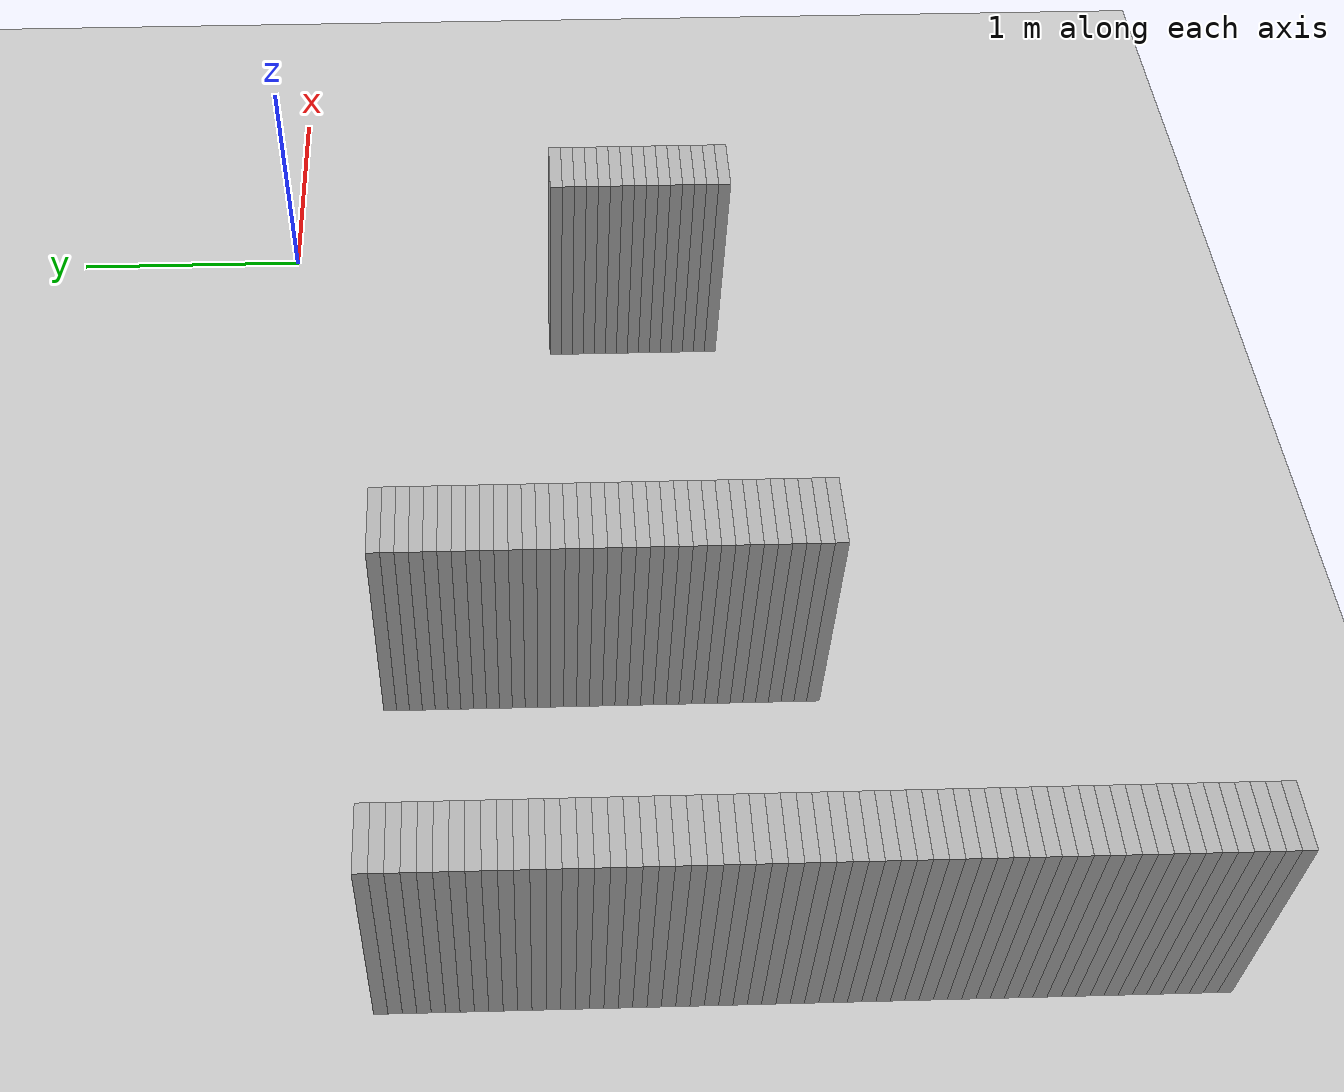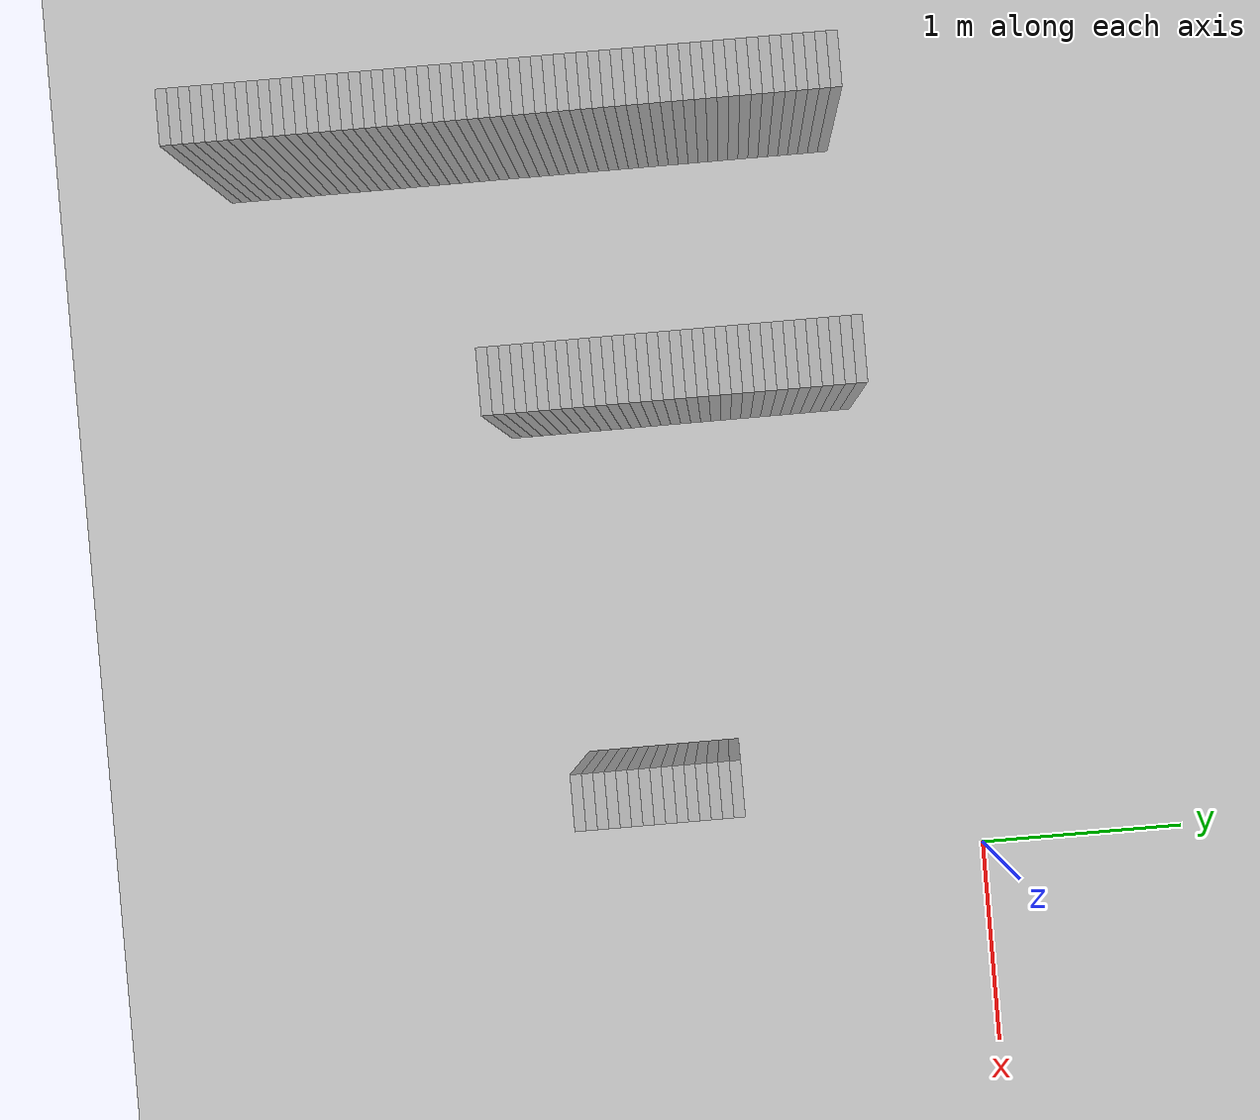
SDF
<sdf version="1.6">
 <world name="maze">
  <include><uri>model://ground_plane</uri></include>
  <include><uri>model://sun</uri></include>
  <model name="wall_0_85">
   <static>true</static>
   <pose>-3.6500000000000004 -0.5 0.5 0 0 0</pose>
   <link name="link">
    <collision name="collision"><geometry><box><size>0.25 0.05 1.0</size></box></geometry></collision>
    <visual name="visual"><geometry><box><size>0.25 0.05 1.0</size></box></geometry></visual>
   </link>
  </model>
  <model name="wall_25_85">
   <static>true</static>
   <pose>-2.375 -0.5 0.5 0 0 0</pose>
   <link name="link">
    <collision name="collision">
     <geometry><box><size>0.30000000000000004 0.05 1.0</size></box></geometry>
    </collision>
    <visual name="visual"><geometry><box><size>0.30000000000000004 0.05 1.0</size></box></geometry></visual>
   </link>
  </model>
  <model name="wall_0_86">
   <static>true</static>
   <pose>-3.6500000000000004 -0.55 0.5 0 0 0</pose>
   <link name="link">
    <collision name="collision"><geometry><box><size>0.25 0.05 1.0</size></box></geometry></collision>
    <visual name="visual"><geometry><box><size>0.25 0.05 1.0</size></box></geometry></visual>
   </link>
  </model>
  <model name="wall_25_86">
   <static>true</static>
   <pose>-2.375 -0.55 0.5 0 0 0</pose>
   <link name="link">
    <collision name="collision">
     <geometry><box><size>0.30000000000000004 0.05 1.0</size></box></geometry>
    </collision>
    <visual name="visual"><geometry><box><size>0.30000000000000004 0.05 1.0</size></box></geometry></visual>
   </link>
  </model>
  <model name="wall_0_87">
   <static>true</static>
   <pose>-3.6500000000000004 -0.6000000000000001 0.5 0 0 0</pose>
   <link name="link">
    <collision name="collision"><geometry><box><size>0.25 0.05 1.0</size></box></geometry></collision>
    <visual name="visual"><geometry><box><size>0.25 0.05 1.0</size></box></geometry></visual>
   </link>
  </model>
  <model name="wall_25_87">
   <static>true</static>
   <pose>-2.375 -0.6000000000000001 0.5 0 0 0</pose>
   <link name="link">
    <collision name="collision">
     <geometry><box><size>0.30000000000000004 0.05 1.0</size></box></geometry>
    </collision>
    <visual name="visual"><geometry><box><size>0.30000000000000004 0.05 1.0</size></box></geometry></visual>
   </link>
  </model>
  <model name="wall_0_88">
   <static>true</static>
   <pose>-3.6500000000000004 -0.65 0.5 0 0 0</pose>
   <link name="link">
    <collision name="collision"><geometry><box><size>0.25 0.05 1.0</size></box></geometry></collision>
    <visual name="visual"><geometry><box><size>0.25 0.05 1.0</size></box></geometry></visual>
   </link>
  </model>
  <model name="wall_25_88">
   <static>true</static>
   <pose>-2.375 -0.65 0.5 0 0 0</pose>
   <link name="link">
    <collision name="collision">
     <geometry><box><size>0.30000000000000004 0.05 1.0</size></box></geometry>
    </collision>
    <visual name="visual"><geometry><box><size>0.30000000000000004 0.05 1.0</size></box></geometry></visual>
   </link>
  </model>
  <model name="wall_0_89">
   <static>true</static>
   <pose>-3.6500000000000004 -0.7000000000000001 0.5 0 0 0</pose>
   <link name="link">
    <collision name="collision"><geometry><box><size>0.25 0.05 1.0</size></box></geometry></collision>
    <visual name="visual"><geometry><box><size>0.25 0.05 1.0</size></box></geometry></visual>
   </link>
  </model>
  <model name="wall_25_89">
   <static>true</static>
   <pose>-2.375 -0.7000000000000001 0.5 0 0 0</pose>
   <link name="link">
    <collision name="collision">
     <geometry><box><size>0.30000000000000004 0.05 1.0</size></box></geometry>
    </collision>
    <visual name="visual"><geometry><box><size>0.30000000000000004 0.05 1.0</size></box></geometry></visual>
   </link>
  </model>
  <model name="wall_0_90">
   <static>true</static>
   <pose>-3.6500000000000004 -0.75 0.5 0 0 0</pose>
   <link name="link">
    <collision name="collision"><geometry><box><size>0.25 0.05 1.0</size></box></geometry></collision>
    <visual name="visual"><geometry><box><size>0.25 0.05 1.0</size></box></geometry></visual>
   </link>
  </model>
  <model name="wall_25_90">
   <static>true</static>
   <pose>-2.375 -0.75 0.5 0 0 0</pose>
   <link name="link">
    <collision name="collision">
     <geometry><box><size>0.30000000000000004 0.05 1.0</size></box></geometry>
    </collision>
    <visual name="visual"><geometry><box><size>0.30000000000000004 0.05 1.0</size></box></geometry></visual>
   </link>
  </model>
  <model name="wall_0_91">
   <static>true</static>
   <pose>-3.6500000000000004 -0.8 0.5 0 0 0</pose>
   <link name="link">
    <collision name="collision"><geometry><box><size>0.25 0.05 1.0</size></box></geometry></collision>
    <visual name="visual"><geometry><box><size>0.25 0.05 1.0</size></box></geometry></visual>
   </link>
  </model>
  <model name="wall_25_91">
   <static>true</static>
   <pose>-2.375 -0.8 0.5 0 0 0</pose>
   <link name="link">
    <collision name="collision">
     <geometry><box><size>0.30000000000000004 0.05 1.0</size></box></geometry>
    </collision>
    <visual name="visual"><geometry><box><size>0.30000000000000004 0.05 1.0</size></box></geometry></visual>
   </link>
  </model>
  <model name="wall_0_92">
   <static>true</static>
   <pose>-3.6500000000000004 -0.8500000000000001 0.5 0 0 0</pose>
   <link name="link">
    <collision name="collision"><geometry><box><size>0.25 0.05 1.0</size></box></geometry></collision>
    <visual name="visual"><geometry><box><size>0.25 0.05 1.0</size></box></geometry></visual>
   </link>
  </model>
  <model name="wall_25_92">
   <static>true</static>
   <pose>-2.375 -0.8500000000000001 0.5 0 0 0</pose>
   <link name="link">
    <collision name="collision">
     <geometry><box><size>0.30000000000000004 0.05 1.0</size></box></geometry>
    </collision>
    <visual name="visual"><geometry><box><size>0.30000000000000004 0.05 1.0</size></box></geometry></visual>
   </link>
  </model>
  <model name="wall_0_93">
   <static>true</static>
   <pose>-3.6500000000000004 -0.9 0.5 0 0 0</pose>
   <link name="link">
    <collision name="collision"><geometry><box><size>0.25 0.05 1.0</size></box></geometry></collision>
    <visual name="visual"><geometry><box><size>0.25 0.05 1.0</size></box></geometry></visual>
   </link>
  </model>
  <model name="wall_25_93">
   <static>true</static>
   <pose>-2.375 -0.9 0.5 0 0 0</pose>
   <link name="link">
    <collision name="collision">
     <geometry><box><size>0.30000000000000004 0.05 1.0</size></box></geometry>
    </collision>
    <visual name="visual"><geometry><box><size>0.30000000000000004 0.05 1.0</size></box></geometry></visual>
   </link>
  </model>
  <model name="wall_0_94">
   <static>true</static>
   <pose>-3.6500000000000004 -0.9500000000000001 0.5 0 0 0</pose>
   <link name="link">
    <collision name="collision"><geometry><box><size>0.25 0.05 1.0</size></box></geometry></collision>
    <visual name="visual"><geometry><box><size>0.25 0.05 1.0</size></box></geometry></visual>
   </link>
  </model>
  <model name="wall_25_94">
   <static>true</static>
   <pose>-2.375 -0.9500000000000001 0.5 0 0 0</pose>
   <link name="link">
    <collision name="collision">
     <geometry><box><size>0.30000000000000004 0.05 1.0</size></box></geometry>
    </collision>
    <visual name="visual"><geometry><box><size>0.30000000000000004 0.05 1.0</size></box></geometry></visual>
   </link>
  </model>
  <model name="wall_0_95">
   <static>true</static>
   <pose>-3.6500000000000004 -1.0 0.5 0 0 0</pose>
   <link name="link">
    <collision name="collision"><geometry><box><size>0.25 0.05 1.0</size></box></geometry></collision>
    <visual name="visual"><geometry><box><size>0.25 0.05 1.0</size></box></geometry></visual>
   </link>
  </model>
  <model name="wall_25_95">
   <static>true</static>
   <pose>-2.375 -1.0 0.5 0 0 0</pose>
   <link name="link">
    <collision name="collision">
     <geometry><box><size>0.30000000000000004 0.05 1.0</size></box></geometry>
    </collision>
    <visual name="visual"><geometry><box><size>0.30000000000000004 0.05 1.0</size></box></geometry></visual>
   </link>
  </model>
  <model name="wall_0_96">
   <static>true</static>
   <pose>-3.6500000000000004 -1.05 0.5 0 0 0</pose>
   <link name="link">
    <collision name="collision"><geometry><box><size>0.25 0.05 1.0</size></box></geometry></collision>
    <visual name="visual"><geometry><box><size>0.25 0.05 1.0</size></box></geometry></visual>
   </link>
  </model>
  <model name="wall_25_96">
   <static>true</static>
   <pose>-2.375 -1.05 0.5 0 0 0</pose>
   <link name="link">
    <collision name="collision">
     <geometry><box><size>0.30000000000000004 0.05 1.0</size></box></geometry>
    </collision>
    <visual name="visual"><geometry><box><size>0.30000000000000004 0.05 1.0</size></box></geometry></visual>
   </link>
  </model>
  <model name="wall_0_97">
   <static>true</static>
   <pose>-3.6500000000000004 -1.1 0.5 0 0 0</pose>
   <link name="link">
    <collision name="collision"><geometry><box><size>0.25 0.05 1.0</size></box></geometry></collision>
    <visual name="visual"><geometry><box><size>0.25 0.05 1.0</size></box></geometry></visual>
   </link>
  </model>
  <model name="wall_25_97">
   <static>true</static>
   <pose>-2.375 -1.1 0.5 0 0 0</pose>
   <link name="link">
    <collision name="collision">
     <geometry><box><size>0.30000000000000004 0.05 1.0</size></box></geometry>
    </collision>
    <visual name="visual"><geometry><box><size>0.30000000000000004 0.05 1.0</size></box></geometry></visual>
   </link>
  </model>
  <model name="wall_0_98">
   <static>true</static>
   <pose>-3.6500000000000004 -1.1500000000000001 0.5 0 0 0</pose>
   <link name="link">
    <collision name="collision"><geometry><box><size>0.25 0.05 1.0</size></box></geometry></collision>
    <visual name="visual"><geometry><box><size>0.25 0.05 1.0</size></box></geometry></visual>
   </link>
  </model>
  <model name="wall_25_98">
   <static>true</static>
   <pose>-2.375 -1.1500000000000001 0.5 0 0 0</pose>
   <link name="link">
    <collision name="collision">
     <geometry><box><size>0.30000000000000004 0.05 1.0</size></box></geometry>
    </collision>
    <visual name="visual"><geometry><box><size>0.30000000000000004 0.05 1.0</size></box></geometry></visual>
   </link>
  </model>
  <model name="wall_0_99">
   <static>true</static>
   <pose>-3.6500000000000004 -1.2000000000000002 0.5 0 0 0</pose>
   <link name="link">
    <collision name="collision"><geometry><box><size>0.25 0.05 1.0</size></box></geometry></collision>
    <visual name="visual"><geometry><box><size>0.25 0.05 1.0</size></box></geometry></visual>
   </link>
  </model>
  <model name="wall_25_99">
   <static>true</static>
   <pose>-2.375 -1.2000000000000002 0.5 0 0 0</pose>
   <link name="link">
    <collision name="collision">
     <geometry><box><size>0.30000000000000004 0.05 1.0</size></box></geometry>
    </collision>
    <visual name="visual"><geometry><box><size>0.30000000000000004 0.05 1.0</size></box></geometry></visual>
   </link>
  </model>
  <model name="wall_63_99">
   <static>true</static>
   <pose>-0.5 -1.2000000000000002 0.5 0 0 0</pose>
   <link name="link">
    <collision name="collision"><geometry><box><size>0.25 0.05 1.0</size></box></geometry></collision>
    <visual name="visual"><geometry><box><size>0.25 0.05 1.0</size></box></geometry></visual>
   </link>
  </model>
  <model name="wall_0_100">
   <static>true</static>
   <pose>-3.6500000000000004 -1.25 0.5 0 0 0</pose>
   <link name="link">
    <collision name="collision"><geometry><box><size>0.25 0.05 1.0</size></box></geometry></collision>
    <visual name="visual"><geometry><box><size>0.25 0.05 1.0</size></box></geometry></visual>
   </link>
  </model>
  <model name="wall_25_100">
   <static>true</static>
   <pose>-2.375 -1.25 0.5 0 0 0</pose>
   <link name="link">
    <collision name="collision">
     <geometry><box><size>0.30000000000000004 0.05 1.0</size></box></geometry>
    </collision>
    <visual name="visual"><geometry><box><size>0.30000000000000004 0.05 1.0</size></box></geometry></visual>
   </link>
  </model>
  <model name="wall_63_100">
   <static>true</static>
   <pose>-0.5 -1.25 0.5 0 0 0</pose>
   <link name="link">
    <collision name="collision"><geometry><box><size>0.25 0.05 1.0</size></box></geometry></collision>
    <visual name="visual"><geometry><box><size>0.25 0.05 1.0</size></box></geometry></visual>
   </link>
  </model>
  <model name="wall_0_101">
   <static>true</static>
   <pose>-3.6500000000000004 -1.3 0.5 0 0 0</pose>
   <link name="link">
    <collision name="collision"><geometry><box><size>0.25 0.05 1.0</size></box></geometry></collision>
    <visual name="visual"><geometry><box><size>0.25 0.05 1.0</size></box></geometry></visual>
   </link>
  </model>
  <model name="wall_25_101">
   <static>true</static>
   <pose>-2.375 -1.3 0.5 0 0 0</pose>
   <link name="link">
    <collision name="collision">
     <geometry><box><size>0.30000000000000004 0.05 1.0</size></box></geometry>
    </collision>
    <visual name="visual"><geometry><box><size>0.30000000000000004 0.05 1.0</size></box></geometry></visual>
   </link>
  </model>
  <model name="wall_63_101">
   <static>true</static>
   <pose>-0.5 -1.3 0.5 0 0 0</pose>
   <link name="link">
    <collision name="collision"><geometry><box><size>0.25 0.05 1.0</size></box></geometry></collision>
    <visual name="visual"><geometry><box><size>0.25 0.05 1.0</size></box></geometry></visual>
   </link>
  </model>
  <model name="wall_0_102">
   <static>true</static>
   <pose>-3.6500000000000004 -1.35 0.5 0 0 0</pose>
   <link name="link">
    <collision name="collision"><geometry><box><size>0.25 0.05 1.0</size></box></geometry></collision>
    <visual name="visual"><geometry><box><size>0.25 0.05 1.0</size></box></geometry></visual>
   </link>
  </model>
  <model name="wall_25_102">
   <static>true</static>
   <pose>-2.375 -1.35 0.5 0 0 0</pose>
   <link name="link">
    <collision name="collision">
     <geometry><box><size>0.30000000000000004 0.05 1.0</size></box></geometry>
    </collision>
    <visual name="visual"><geometry><box><size>0.30000000000000004 0.05 1.0</size></box></geometry></visual>
   </link>
  </model>
  <model name="wall_63_102">
   <static>true</static>
   <pose>-0.5 -1.35 0.5 0 0 0</pose>
   <link name="link">
    <collision name="collision"><geometry><box><size>0.25 0.05 1.0</size></box></geometry></collision>
    <visual name="visual"><geometry><box><size>0.25 0.05 1.0</size></box></geometry></visual>
   </link>
  </model>
  <model name="wall_0_103">
   <static>true</static>
   <pose>-3.6500000000000004 -1.4000000000000001 0.5 0 0 0</pose>
   <link name="link">
    <collision name="collision"><geometry><box><size>0.25 0.05 1.0</size></box></geometry></collision>
    <visual name="visual"><geometry><box><size>0.25 0.05 1.0</size></box></geometry></visual>
   </link>
  </model>
  <model name="wall_25_103">
   <static>true</static>
   <pose>-2.375 -1.4000000000000001 0.5 0 0 0</pose>
   <link name="link">
    <collision name="collision">
     <geometry><box><size>0.30000000000000004 0.05 1.0</size></box></geometry>
    </collision>
    <visual name="visual"><geometry><box><size>0.30000000000000004 0.05 1.0</size></box></geometry></visual>
   </link>
  </model>
  <model name="wall_63_103">
   <static>true</static>
   <pose>-0.5 -1.4000000000000001 0.5 0 0 0</pose>
   <link name="link">
    <collision name="collision"><geometry><box><size>0.25 0.05 1.0</size></box></geometry></collision>
    <visual name="visual"><geometry><box><size>0.25 0.05 1.0</size></box></geometry></visual>
   </link>
  </model>
  <model name="wall_0_104">
   <static>true</static>
   <pose>-3.6500000000000004 -1.4500000000000002 0.5 0 0 0</pose>
   <link name="link">
    <collision name="collision"><geometry><box><size>0.25 0.05 1.0</size></box></geometry></collision>
    <visual name="visual"><geometry><box><size>0.25 0.05 1.0</size></box></geometry></visual>
   </link>
  </model>
  <model name="wall_25_104">
   <static>true</static>
   <pose>-2.375 -1.4500000000000002 0.5 0 0 0</pose>
   <link name="link">
    <collision name="collision">
     <geometry><box><size>0.30000000000000004 0.05 1.0</size></box></geometry>
    </collision>
    <visual name="visual"><geometry><box><size>0.30000000000000004 0.05 1.0</size></box></geometry></visual>
   </link>
  </model>
  <model name="wall_63_104">
   <static>true</static>
   <pose>-0.5 -1.4500000000000002 0.5 0 0 0</pose>
   <link name="link">
    <collision name="collision"><geometry><box><size>0.25 0.05 1.0</size></box></geometry></collision>
    <visual name="visual"><geometry><box><size>0.25 0.05 1.0</size></box></geometry></visual>
   </link>
  </model>
  <model name="wall_0_105">
   <static>true</static>
   <pose>-3.6500000000000004 -1.5 0.5 0 0 0</pose>
   <link name="link">
    <collision name="collision"><geometry><box><size>0.25 0.05 1.0</size></box></geometry></collision>
    <visual name="visual"><geometry><box><size>0.25 0.05 1.0</size></box></geometry></visual>
   </link>
  </model>
  <model name="wall_25_105">
   <static>true</static>
   <pose>-2.375 -1.5 0.5 0 0 0</pose>
   <link name="link">
    <collision name="collision">
     <geometry><box><size>0.30000000000000004 0.05 1.0</size></box></geometry>
    </collision>
    <visual name="visual"><geometry><box><size>0.30000000000000004 0.05 1.0</size></box></geometry></visual>
   </link>
  </model>
  <model name="wall_63_105">
   <static>true</static>
   <pose>-0.5 -1.5 0.5 0 0 0</pose>
   <link name="link">
    <collision name="collision"><geometry><box><size>0.25 0.05 1.0</size></box></geometry></collision>
    <visual name="visual"><geometry><box><size>0.25 0.05 1.0</size></box></geometry></visual>
   </link>
  </model>
  <model name="wall_0_106">
   <static>true</static>
   <pose>-3.6500000000000004 -1.55 0.5 0 0 0</pose>
   <link name="link">
    <collision name="collision"><geometry><box><size>0.25 0.05 1.0</size></box></geometry></collision>
    <visual name="visual"><geometry><box><size>0.25 0.05 1.0</size></box></geometry></visual>
   </link>
  </model>
  <model name="wall_25_106">
   <static>true</static>
   <pose>-2.375 -1.55 0.5 0 0 0</pose>
   <link name="link">
    <collision name="collision">
     <geometry><box><size>0.30000000000000004 0.05 1.0</size></box></geometry>
    </collision>
    <visual name="visual"><geometry><box><size>0.30000000000000004 0.05 1.0</size></box></geometry></visual>
   </link>
  </model>
  <model name="wall_63_106">
   <static>true</static>
   <pose>-0.5 -1.55 0.5 0 0 0</pose>
   <link name="link">
    <collision name="collision"><geometry><box><size>0.25 0.05 1.0</size></box></geometry></collision>
    <visual name="visual"><geometry><box><size>0.25 0.05 1.0</size></box></geometry></visual>
   </link>
  </model>
  <model name="wall_0_107">
   <static>true</static>
   <pose>-3.6500000000000004 -1.6 0.5 0 0 0</pose>
   <link name="link">
    <collision name="collision"><geometry><box><size>0.25 0.05 1.0</size></box></geometry></collision>
    <visual name="visual"><geometry><box><size>0.25 0.05 1.0</size></box></geometry></visual>
   </link>
  </model>
  <model name="wall_25_107">
   <static>true</static>
   <pose>-2.375 -1.6 0.5 0 0 0</pose>
   <link name="link">
    <collision name="collision">
     <geometry><box><size>0.30000000000000004 0.05 1.0</size></box></geometry>
    </collision>
    <visual name="visual"><geometry><box><size>0.30000000000000004 0.05 1.0</size></box></geometry></visual>
   </link>
  </model>
  <model name="wall_63_107">
   <static>true</static>
   <pose>-0.5 -1.6 0.5 0 0 0</pose>
   <link name="link">
    <collision name="collision"><geometry><box><size>0.25 0.05 1.0</size></box></geometry></collision>
    <visual name="visual"><geometry><box><size>0.25 0.05 1.0</size></box></geometry></visual>
   </link>
  </model>
  <model name="wall_0_108">
   <static>true</static>
   <pose>-3.6500000000000004 -1.6500000000000001 0.5 0 0 0</pose>
   <link name="link">
    <collision name="collision"><geometry><box><size>0.25 0.05 1.0</size></box></geometry></collision>
    <visual name="visual"><geometry><box><size>0.25 0.05 1.0</size></box></geometry></visual>
   </link>
  </model>
  <model name="wall_25_108">
   <static>true</static>
   <pose>-2.375 -1.6500000000000001 0.5 0 0 0</pose>
   <link name="link">
    <collision name="collision">
     <geometry><box><size>0.30000000000000004 0.05 1.0</size></box></geometry>
    </collision>
    <visual name="visual"><geometry><box><size>0.30000000000000004 0.05 1.0</size></box></geometry></visual>
   </link>
  </model>
  <model name="wall_63_108">
   <static>true</static>
   <pose>-0.5 -1.6500000000000001 0.5 0 0 0</pose>
   <link name="link">
    <collision name="collision"><geometry><box><size>0.25 0.05 1.0</size></box></geometry></collision>
    <visual name="visual"><geometry><box><size>0.25 0.05 1.0</size></box></geometry></visual>
   </link>
  </model>
  <model name="wall_0_109">
   <static>true</static>
   <pose>-3.6500000000000004 -1.7000000000000002 0.5 0 0 0</pose>
   <link name="link">
    <collision name="collision"><geometry><box><size>0.25 0.05 1.0</size></box></geometry></collision>
    <visual name="visual"><geometry><box><size>0.25 0.05 1.0</size></box></geometry></visual>
   </link>
  </model>
  <model name="wall_25_109">
   <static>true</static>
   <pose>-2.375 -1.7000000000000002 0.5 0 0 0</pose>
   <link name="link">
    <collision name="collision">
     <geometry><box><size>0.30000000000000004 0.05 1.0</size></box></geometry>
    </collision>
    <visual name="visual"><geometry><box><size>0.30000000000000004 0.05 1.0</size></box></geometry></visual>
   </link>
  </model>
  <model name="wall_63_109">
   <static>true</static>
   <pose>-0.5 -1.7000000000000002 0.5 0 0 0</pose>
   <link name="link">
    <collision name="collision"><geometry><box><size>0.25 0.05 1.0</size></box></geometry></collision>
    <visual name="visual"><geometry><box><size>0.25 0.05 1.0</size></box></geometry></visual>
   </link>
  </model>
  <model name="wall_0_110">
   <static>true</static>
   <pose>-3.6500000000000004 -1.75 0.5 0 0 0</pose>
   <link name="link">
    <collision name="collision"><geometry><box><size>0.25 0.05 1.0</size></box></geometry></collision>
    <visual name="visual"><geometry><box><size>0.25 0.05 1.0</size></box></geometry></visual>
   </link>
  </model>
  <model name="wall_25_110">
   <static>true</static>
   <pose>-2.375 -1.75 0.5 0 0 0</pose>
   <link name="link">
    <collision name="collision">
     <geometry><box><size>0.30000000000000004 0.05 1.0</size></box></geometry>
    </collision>
    <visual name="visual"><geometry><box><size>0.30000000000000004 0.05 1.0</size></box></geometry></visual>
   </link>
  </model>
  <model name="wall_63_110">
   <static>true</static>
   <pose>-0.5 -1.75 0.5 0 0 0</pose>
   <link name="link">
    <collision name="collision"><geometry><box><size>0.25 0.05 1.0</size></box></geometry></collision>
    <visual name="visual"><geometry><box><size>0.25 0.05 1.0</size></box></geometry></visual>
   </link>
  </model>
  <model name="wall_0_111">
   <static>true</static>
   <pose>-3.6500000000000004 -1.8 0.5 0 0 0</pose>
   <link name="link">
    <collision name="collision"><geometry><box><size>0.25 0.05 1.0</size></box></geometry></collision>
    <visual name="visual"><geometry><box><size>0.25 0.05 1.0</size></box></geometry></visual>
   </link>
  </model>
  <model name="wall_25_111">
   <static>true</static>
   <pose>-2.375 -1.8 0.5 0 0 0</pose>
   <link name="link">
    <collision name="collision">
     <geometry><box><size>0.30000000000000004 0.05 1.0</size></box></geometry>
    </collision>
    <visual name="visual"><geometry><box><size>0.30000000000000004 0.05 1.0</size></box></geometry></visual>
   </link>
  </model>
  <model name="wall_63_111">
   <static>true</static>
   <pose>-0.5 -1.8 0.5 0 0 0</pose>
   <link name="link">
    <collision name="collision"><geometry><box><size>0.25 0.05 1.0</size></box></geometry></collision>
    <visual name="visual"><geometry><box><size>0.25 0.05 1.0</size></box></geometry></visual>
   </link>
  </model>
  <model name="wall_0_112">
   <static>true</static>
   <pose>-3.6500000000000004 -1.85 0.5 0 0 0</pose>
   <link name="link">
    <collision name="collision"><geometry><box><size>0.25 0.05 1.0</size></box></geometry></collision>
    <visual name="visual"><geometry><box><size>0.25 0.05 1.0</size></box></geometry></visual>
   </link>
  </model>
  <model name="wall_25_112">
   <static>true</static>
   <pose>-2.375 -1.85 0.5 0 0 0</pose>
   <link name="link">
    <collision name="collision">
     <geometry><box><size>0.30000000000000004 0.05 1.0</size></box></geometry>
    </collision>
    <visual name="visual"><geometry><box><size>0.30000000000000004 0.05 1.0</size></box></geometry></visual>
   </link>
  </model>
  <model name="wall_63_112">
   <static>true</static>
   <pose>-0.5 -1.85 0.5 0 0 0</pose>
   <link name="link">
    <collision name="collision"><geometry><box><size>0.25 0.05 1.0</size></box></geometry></collision>
    <visual name="visual"><geometry><box><size>0.25 0.05 1.0</size></box></geometry></visual>
   </link>
  </model>
  <model name="wall_0_113">
   <static>true</static>
   <pose>-3.6500000000000004 -1.9000000000000001 0.5 0 0 0</pose>
   <link name="link">
    <collision name="collision"><geometry><box><size>0.25 0.05 1.0</size></box></geometry></collision>
    <visual name="visual"><geometry><box><size>0.25 0.05 1.0</size></box></geometry></visual>
   </link>
  </model>
  <model name="wall_25_113">
   <static>true</static>
   <pose>-2.375 -1.9000000000000001 0.5 0 0 0</pose>
   <link name="link">
    <collision name="collision">
     <geometry><box><size>0.30000000000000004 0.05 1.0</size></box></geometry>
    </collision>
    <visual name="visual"><geometry><box><size>0.30000000000000004 0.05 1.0</size></box></geometry></visual>
   </link>
  </model>
  <model name="wall_63_113">
   <static>true</static>
   <pose>-0.5 -1.9000000000000001 0.5 0 0 0</pose>
   <link name="link">
    <collision name="collision"><geometry><box><size>0.25 0.05 1.0</size></box></geometry></collision>
    <visual name="visual"><geometry><box><size>0.25 0.05 1.0</size></box></geometry></visual>
   </link>
  </model>
  <model name="wall_0_114">
   <static>true</static>
   <pose>-3.6500000000000004 -1.9500000000000002 0.5 0 0 0</pose>
   <link name="link">
    <collision name="collision"><geometry><box><size>0.25 0.05 1.0</size></box></geometry></collision>
    <visual name="visual"><geometry><box><size>0.25 0.05 1.0</size></box></geometry></visual>
   </link>
  </model>
  <model name="wall_25_114">
   <static>true</static>
   <pose>-2.375 -1.9500000000000002 0.5 0 0 0</pose>
   <link name="link">
    <collision name="collision">
     <geometry><box><size>0.30000000000000004 0.05 1.0</size></box></geometry>
    </collision>
    <visual name="visual"><geometry><box><size>0.30000000000000004 0.05 1.0</size></box></geometry></visual>
   </link>
  </model>
  <model name="wall_0_115">
   <static>true</static>
   <pose>-3.6500000000000004 -2.0 0.5 0 0 0</pose>
   <link name="link">
    <collision name="collision"><geometry><box><size>0.25 0.05 1.0</size></box></geometry></collision>
    <visual name="visual"><geometry><box><size>0.25 0.05 1.0</size></box></geometry></visual>
   </link>
  </model>
  <model name="wall_25_115">
   <static>true</static>
   <pose>-2.375 -2.0 0.5 0 0 0</pose>
   <link name="link">
    <collision name="collision">
     <geometry><box><size>0.30000000000000004 0.05 1.0</size></box></geometry>
    </collision>
    <visual name="visual"><geometry><box><size>0.30000000000000004 0.05 1.0</size></box></geometry></visual>
   </link>
  </model>
  <model name="wall_0_116">
   <static>true</static>
   <pose>-3.6500000000000004 -2.0500000000000003 0.5 0 0 0</pose>
   <link name="link">
    <collision name="collision"><geometry><box><size>0.25 0.05 1.0</size></box></geometry></collision>
    <visual name="visual"><geometry><box><size>0.25 0.05 1.0</size></box></geometry></visual>
   </link>
  </model>
  <model name="wall_25_116">
   <static>true</static>
   <pose>-2.375 -2.0500000000000003 0.5 0 0 0</pose>
   <link name="link">
    <collision name="collision">
     <geometry><box><size>0.30000000000000004 0.05 1.0</size></box></geometry>
    </collision>
    <visual name="visual"><geometry><box><size>0.30000000000000004 0.05 1.0</size></box></geometry></visual>
   </link>
  </model>
  <model name="wall_0_117">
   <static>true</static>
   <pose>-3.6500000000000004 -2.1 0.5 0 0 0</pose>
   <link name="link">
    <collision name="collision"><geometry><box><size>0.25 0.05 1.0</size></box></geometry></collision>
    <visual name="visual"><geometry><box><size>0.25 0.05 1.0</size></box></geometry></visual>
   </link>
  </model>
  <model name="wall_25_117">
   <static>true</static>
   <pose>-2.375 -2.1 0.5 0 0 0</pose>
   <link name="link">
    <collision name="collision">
     <geometry><box><size>0.30000000000000004 0.05 1.0</size></box></geometry>
    </collision>
    <visual name="visual"><geometry><box><size>0.30000000000000004 0.05 1.0</size></box></geometry></visual>
   </link>
  </model>
  <model name="wall_0_118">
   <static>true</static>
   <pose>-3.6500000000000004 -2.15 0.5 0 0 0</pose>
   <link name="link">
    <collision name="collision"><geometry><box><size>0.25 0.05 1.0</size></box></geometry></collision>
    <visual name="visual"><geometry><box><size>0.25 0.05 1.0</size></box></geometry></visual>
   </link>
  </model>
  <model name="wall_25_118">
   <static>true</static>
   <pose>-2.375 -2.15 0.5 0 0 0</pose>
   <link name="link">
    <collision name="collision">
     <geometry><box><size>0.30000000000000004 0.05 1.0</size></box></geometry>
    </collision>
    <visual name="visual"><geometry><box><size>0.30000000000000004 0.05 1.0</size></box></geometry></visual>
   </link>
  </model>
  <model name="wall_0_119">
   <static>true</static>
   <pose>-3.6500000000000004 -2.2 0.5 0 0 0</pose>
   <link name="link">
    <collision name="collision"><geometry><box><size>0.25 0.05 1.0</size></box></geometry></collision>
    <visual name="visual"><geometry><box><size>0.25 0.05 1.0</size></box></geometry></visual>
   </link>
  </model>
  <model name="wall_0_120">
   <static>true</static>
   <pose>-3.6500000000000004 -2.25 0.5 0 0 0</pose>
   <link name="link">
    <collision name="collision"><geometry><box><size>0.25 0.05 1.0</size></box></geometry></collision>
    <visual name="visual"><geometry><box><size>0.25 0.05 1.0</size></box></geometry></visual>
   </link>
  </model>
  <model name="wall_0_121">
   <static>true</static>
   <pose>-3.6500000000000004 -2.3000000000000003 0.5 0 0 0</pose>
   <link name="link">
    <collision name="collision"><geometry><box><size>0.25 0.05 1.0</size></box></geometry></collision>
    <visual name="visual"><geometry><box><size>0.25 0.05 1.0</size></box></geometry></visual>
   </link>
  </model>
  <model name="wall_0_122">
   <static>true</static>
   <pose>-3.6500000000000004 -2.35 0.5 0 0 0</pose>
   <link name="link">
    <collision name="collision"><geometry><box><size>0.25 0.05 1.0</size></box></geometry></collision>
    <visual name="visual"><geometry><box><size>0.25 0.05 1.0</size></box></geometry></visual>
   </link>
  </model>
  <model name="wall_0_123">
   <static>true</static>
   <pose>-3.6500000000000004 -2.4000000000000004 0.5 0 0 0</pose>
   <link name="link">
    <collision name="collision"><geometry><box><size>0.25 0.05 1.0</size></box></geometry></collision>
    <visual name="visual"><geometry><box><size>0.25 0.05 1.0</size></box></geometry></visual>
   </link>
  </model>
  <model name="wall_0_124">
   <static>true</static>
   <pose>-3.6500000000000004 -2.45 0.5 0 0 0</pose>
   <link name="link">
    <collision name="collision"><geometry><box><size>0.25 0.05 1.0</size></box></geometry></collision>
    <visual name="visual"><geometry><box><size>0.25 0.05 1.0</size></box></geometry></visual>
   </link>
  </model>
  <model name="wall_0_125">
   <static>true</static>
   <pose>-3.6500000000000004 -2.5 0.5 0 0 0</pose>
   <link name="link">
    <collision name="collision"><geometry><box><size>0.25 0.05 1.0</size></box></geometry></collision>
    <visual name="visual"><geometry><box><size>0.25 0.05 1.0</size></box></geometry></visual>
   </link>
  </model>
  <model name="wall_0_126">
   <static>true</static>
   <pose>-3.6500000000000004 -2.5500000000000003 0.5 0 0 0</pose>
   <link name="link">
    <collision name="collision"><geometry><box><size>0.25 0.05 1.0</size></box></geometry></collision>
    <visual name="visual"><geometry><box><size>0.25 0.05 1.0</size></box></geometry></visual>
   </link>
  </model>
  <model name="wall_0_127">
   <static>true</static>
   <pose>-3.6500000000000004 -2.6 0.5 0 0 0</pose>
   <link name="link">
    <collision name="collision"><geometry><box><size>0.25 0.05 1.0</size></box></geometry></collision>
    <visual name="visual"><geometry><box><size>0.25 0.05 1.0</size></box></geometry></visual>
   </link>
  </model>
  <model name="wall_0_128">
   <static>true</static>
   <pose>-3.6500000000000004 -2.6500000000000004 0.5 0 0 0</pose>
   <link name="link">
    <collision name="collision"><geometry><box><size>0.25 0.05 1.0</size></box></geometry></collision>
    <visual name="visual"><geometry><box><size>0.25 0.05 1.0</size></box></geometry></visual>
   </link>
  </model>
  <model name="wall_0_129">
   <static>true</static>
   <pose>-3.6500000000000004 -2.7 0.5 0 0 0</pose>
   <link name="link">
    <collision name="collision"><geometry><box><size>0.25 0.05 1.0</size></box></geometry></collision>
    <visual name="visual"><geometry><box><size>0.25 0.05 1.0</size></box></geometry></visual>
   </link>
  </model>
  <model name="wall_0_130">
   <static>true</static>
   <pose>-3.6500000000000004 -2.75 0.5 0 0 0</pose>
   <link name="link">
    <collision name="collision"><geometry><box><size>0.25 0.05 1.0</size></box></geometry></collision>
    <visual name="visual"><geometry><box><size>0.25 0.05 1.0</size></box></geometry></visual>
   </link>
  </model>
  <model name="wall_0_131">
   <static>true</static>
   <pose>-3.6500000000000004 -2.8000000000000003 0.5 0 0 0</pose>
   <link name="link">
    <collision name="collision"><geometry><box><size>0.25 0.05 1.0</size></box></geometry></collision>
    <visual name="visual"><geometry><box><size>0.25 0.05 1.0</size></box></geometry></visual>
   </link>
  </model>
  <model name="wall_0_132">
   <static>true</static>
   <pose>-3.6500000000000004 -2.85 0.5 0 0 0</pose>
   <link name="link">
    <collision name="collision"><geometry><box><size>0.25 0.05 1.0</size></box></geometry></collision>
    <visual name="visual"><geometry><box><size>0.25 0.05 1.0</size></box></geometry></visual>
   </link>
  </model>
  <model name="wall_0_133">
   <static>true</static>
   <pose>-3.6500000000000004 -2.9000000000000004 0.5 0 0 0</pose>
   <link name="link">
    <collision name="collision"><geometry><box><size>0.25 0.05 1.0</size></box></geometry></collision>
    <visual name="visual"><geometry><box><size>0.25 0.05 1.0</size></box></geometry></visual>
   </link>
  </model>
  <model name="wall_0_134">
   <static>true</static>
   <pose>-3.6500000000000004 -2.95 0.5 0 0 0</pose>
   <link name="link">
    <collision name="collision"><geometry><box><size>0.25 0.05 1.0</size></box></geometry></collision>
    <visual name="visual"><geometry><box><size>0.25 0.05 1.0</size></box></geometry></visual>
   </link>
  </model>
  <model name="wall_0_135">
   <static>true</static>
   <pose>-3.6500000000000004 -3.0 0.5 0 0 0</pose>
   <link name="link">
    <collision name="collision"><geometry><box><size>0.25 0.05 1.0</size></box></geometry></collision>
    <visual name="visual"><geometry><box><size>0.25 0.05 1.0</size></box></geometry></visual>
   </link>
  </model>
  <model name="wall_0_136">
   <static>true</static>
   <pose>-3.6500000000000004 -3.0500000000000003 0.5 0 0 0</pose>
   <link name="link">
    <collision name="collision"><geometry><box><size>0.25 0.05 1.0</size></box></geometry></collision>
    <visual name="visual"><geometry><box><size>0.25 0.05 1.0</size></box></geometry></visual>
   </link>
  </model>
  <model name="wall_0_137">
   <static>true</static>
   <pose>-3.6500000000000004 -3.1 0.5 0 0 0</pose>
   <link name="link">
    <collision name="collision"><geometry><box><size>0.25 0.05 1.0</size></box></geometry></collision>
    <visual name="visual"><geometry><box><size>0.25 0.05 1.0</size></box></geometry></visual>
   </link>
  </model>
  <model name="wall_0_138">
   <static>true</static>
   <pose>-3.6500000000000004 -3.1500000000000004 0.5 0 0 0</pose>
   <link name="link">
    <collision name="collision"><geometry><box><size>0.25 0.05 1.0</size></box></geometry></collision>
    <visual name="visual"><geometry><box><size>0.25 0.05 1.0</size></box></geometry></visual>
   </link>
  </model>
  <model name="wall_0_139">
   <static>true</static>
   <pose>-3.6500000000000004 -3.2 0.5 0 0 0</pose>
   <link name="link">
    <collision name="collision"><geometry><box><size>0.25 0.05 1.0</size></box></geometry></collision>
    <visual name="visual"><geometry><box><size>0.25 0.05 1.0</size></box></geometry></visual>
   </link>
  </model>
  <model name="wall_0_140">
   <static>true</static>
   <pose>-3.6500000000000004 -3.25 0.5 0 0 0</pose>
   <link name="link">
    <collision name="collision"><geometry><box><size>0.25 0.05 1.0</size></box></geometry></collision>
    <visual name="visual"><geometry><box><size>0.25 0.05 1.0</size></box></geometry></visual>
   </link>
  </model>
  <model name="wall_0_141">
   <static>true</static>
   <pose>-3.6500000000000004 -3.3000000000000003 0.5 0 0 0</pose>
   <link name="link">
    <collision name="collision"><geometry><box><size>0.25 0.05 1.0</size></box></geometry></collision>
    <visual name="visual"><geometry><box><size>0.25 0.05 1.0</size></box></geometry></visual>
   </link>
  </model>
  <model name="wall_0_142">
   <static>true</static>
   <pose>-3.6500000000000004 -3.35 0.5 0 0 0</pose>
   <link name="link">
    <collision name="collision"><geometry><box><size>0.25 0.05 1.0</size></box></geometry></collision>
    <visual name="visual"><geometry><box><size>0.25 0.05 1.0</size></box></geometry></visual>
   </link>
  </model>
  <model name="wall_0_143">
   <static>true</static>
   <pose>-3.6500000000000004 -3.4000000000000004 0.5 0 0 0</pose>
   <link name="link">
    <collision name="collision"><geometry><box><size>0.25 0.05 1.0</size></box></geometry></collision>
    <visual name="visual"><geometry><box><size>0.25 0.05 1.0</size></box></geometry></visual>
   </link>
  </model>
  <model name="wall_0_144">
   <static>true</static>
   <pose>-3.6500000000000004 -3.45 0.5 0 0 0</pose>
   <link name="link">
    <collision name="collision"><geometry><box><size>0.25 0.05 1.0</size></box></geometry></collision>
    <visual name="visual"><geometry><box><size>0.25 0.05 1.0</size></box></geometry></visual>
   </link>
  </model>
 </world>
</sdf>
